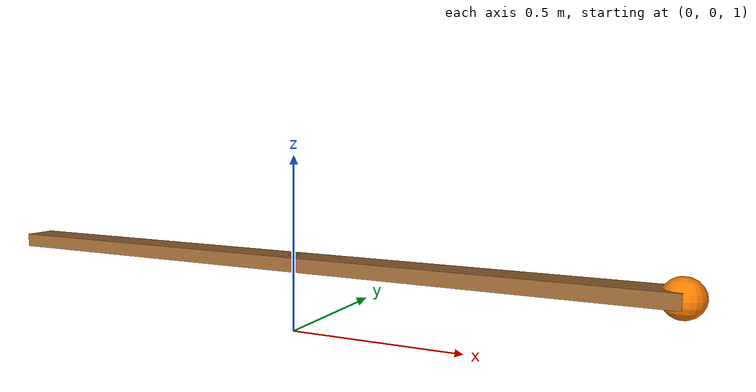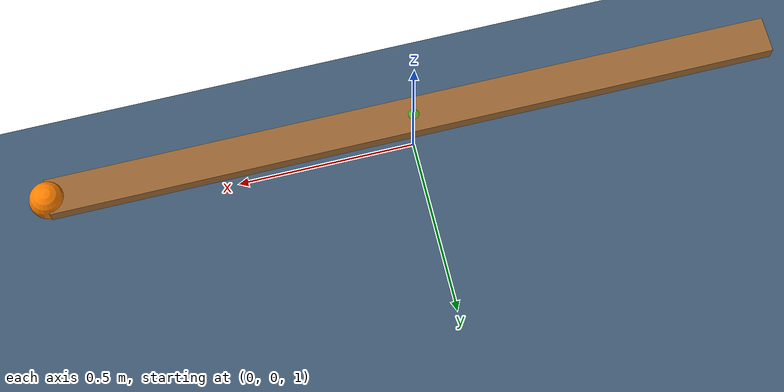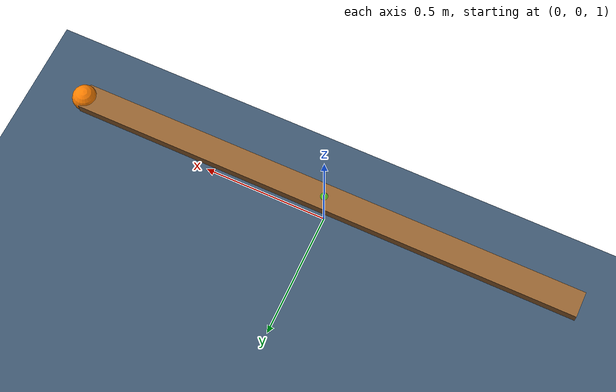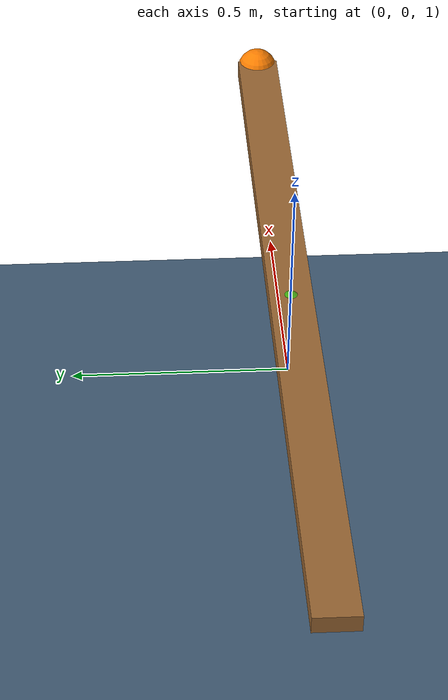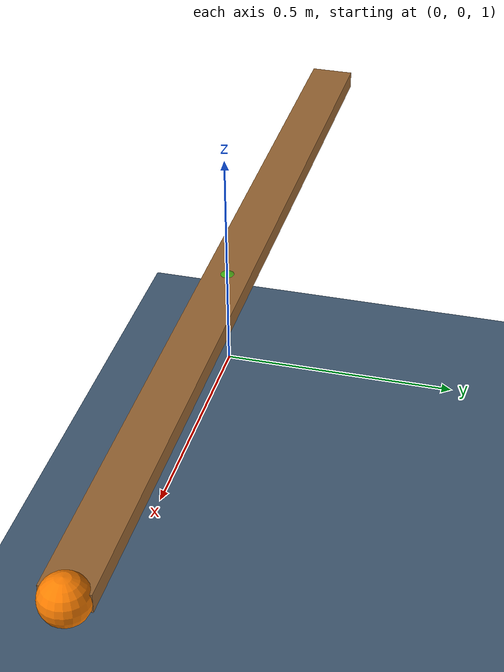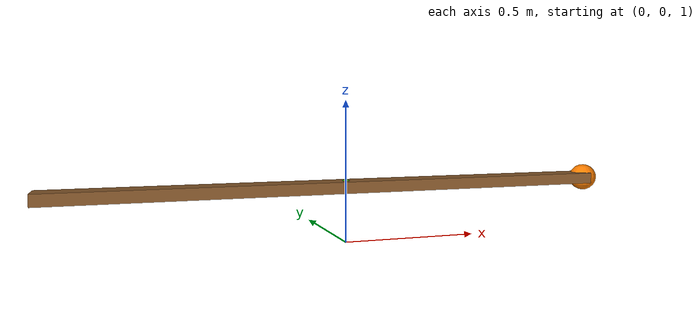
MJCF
<mujoco model="human_board_demo">
  <compiler angle="radian"/>
  <option gravity="0 0 -9.81" timestep="0.002"/>

  <visual>
    <global offwidth="1280" offheight="900"/>
  </visual>

  <asset>
    <!-- Same visual environment as scene_grasp_board_long.xml, without PR2. -->
    <texture type="skybox" file="meshes/desert.png"
             gridsize="3 4" gridlayout=".U..LFRB.D.."/>
    <texture name="plane" type="2d" builtin="checker"
             rgb1=".2 .3 .4" rgb2=".3 .4 .5"
             width="512" height="512" mark="cross" markrgb=".8 .8 .8"/>
    <material name="plane" reflectance="0.3" texture="plane"
              texrepeat="1 1" texuniform="true"/>
    <material name="wood" rgba="0.6 0.4 0.2 1"/>
  </asset>

  <worldbody>
    <light directional="true" pos="0 0 30" dir="0 -0.5 -1"/>
    <geom name="floor" pos="0 0 0" size="0 0 .25" type="plane"
          material="plane" contype="7" conaffinity="7" condim="3"
          solref="0.001 0.01" solimp="0.9 0.95 0.001"/>

    <!-- Keep the board in view. The old xyaxes pointed away from the origin,
         so the viewer rendered only the skybox. -->
    <camera name="fixed" mode="targetbody" target="board" pos="3 -4 4.0"/>

    <body name="board" pos="0 0 1.2" quat="1 0 0 0">
      <freejoint name="board_joint"/>
      <geom name="board_geom" type="box" size="1.0 0.05 0.02"
            mass="1.8" material="wood"/>
      <!-- human hand: far end, force applied here -->
      <site name="hand" type="sphere" size="0.05" pos="1.0 0 0" rgba="1 0.5 0 1"/>
      <!-- COM marker -->
      <site name="center" type="sphere" size="0.025" pos="0 0 0" rgba="0 1 0 0.5"/>
    </body>
  </worldbody>
</mujoco>
